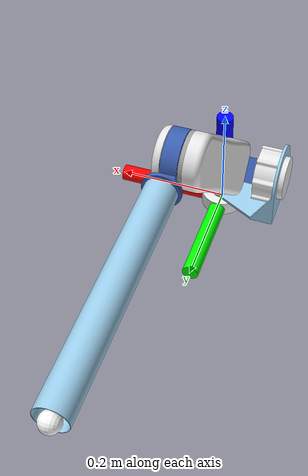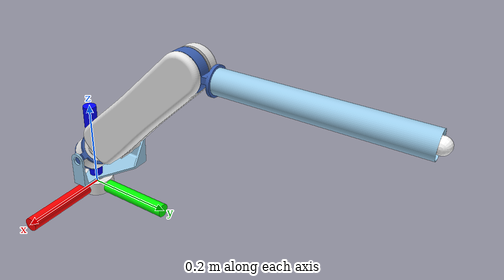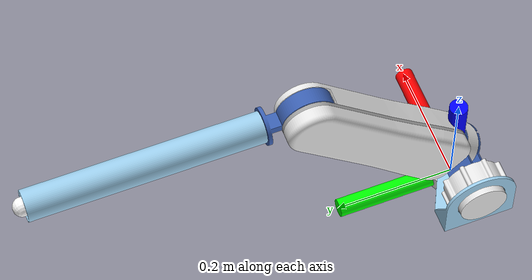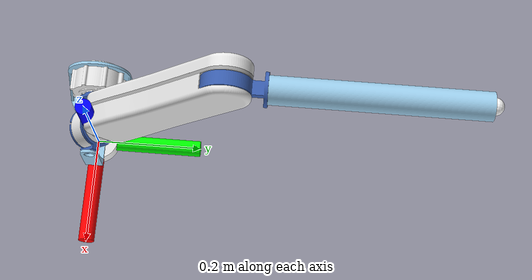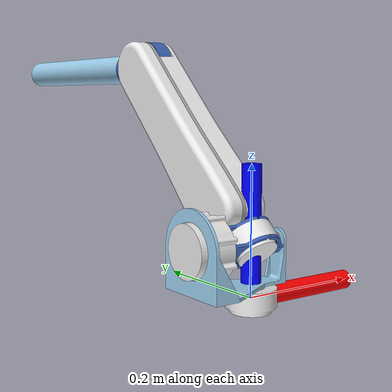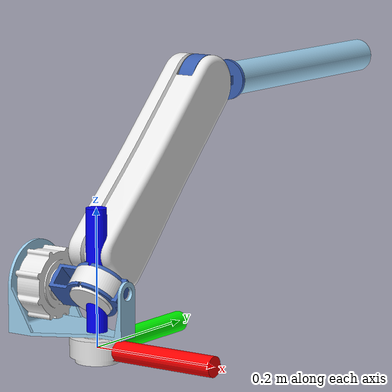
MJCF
<?xml version='1.0' encoding='utf-8'?>
<mujoco model="sim_arm_131-1x3-none">
  <compiler angle="radian" meshdir="meshes" />
  <option timestep="0.001" gravity="0 0 -9.81"></option>

  <asset>
    <mesh name="rs01_sim_1" file="rs01_sim_1.stl" />
    <mesh name="main_shoulder_bracket_190fdce0f16e70a27" file="main_shoulder_bracket_190fdce0f16e70a27.stl" />
    <mesh name="rs03_sim_1" file="rs03_sim_1.stl" />
    <mesh name="m3_to_bearing_bracket_190fdce0f16e70a27" file="m3_to_bearing_bracket_190fdce0f16e70a27.stl" />
    <mesh name="rs01_sim_2" file="rs01_sim_2.stl" />
    <mesh name="m2_to_m3_bracket_190fdce0f16e70a27" file="m2_to_m3_bracket_190fdce0f16e70a27.stl" />
    <mesh name="shoulder_input_1" file="shoulder_input_1.stl" />
    <mesh name="main_plate_1" file="main_plate_1.stl" />
    <mesh name="rs01_sim_3" file="rs01_sim_3.stl" />
    <mesh name="motor_side_shell_1" file="motor_side_shell_1.stl" />
    <mesh name="trans_side_shell_1" file="trans_side_shell_1.stl" />
    <mesh name="secondary_plate_1" file="secondary_plate_1.stl" />
    <mesh name="wrist_output_1" file="wrist_output_1.stl" />
    <mesh name="dummy_tube_wrist_1" file="Longer_Dummy_Wrist_Reversed.stl" />
  </asset>

  <contact>
    <exclude name="fix01" body1="root" body2="body_1"/>
    <exclude name="fix02" body1="root" body2="body_2"/>
    <exclude name="fix03" body1="root" body2="body_3"/>
    <exclude name="fix04" body1="root" body2="body_4"/>
    <exclude name="fix05" body1="body_1" body2="body_2"/>
    <exclude name="fix06" body1="body_1" body2="body_3"/>
    <exclude name="fix07" body1="body_1" body2="body_4"/>
    <exclude name="fix08" body1="body_2" body2="body_3"/>
    <exclude name="fix09" body1="body_2" body2="body_4"/>
    <exclude name="fix10" body1="body_3" body2="body_4"/>
  </contact>

  <worldbody>
    <site type="cylinder" name="worldX" pos = "0.1 0 0" euler="0 1.570796 0" size="0.015 0.1" rgba="1 0 0 1" />
    <site type="cylinder" name="worldY" pos = "0 0.1 0" euler="1.570796 0 0" size="0.015 0.1" rgba="0 1 0 1" />
    <site type="cylinder" name="worldZ" pos = "0 0 0.1" euler="0 0 0" size="0.015 0.1" rgba="0 0 1 1" />

    <body name="root" pos="0 0 0" quat="1 0 0 0">
      <geom type="mesh" rgba="0.917647 0.917647 0.917647 1" mesh="rs01_sim_1" mass="0.38"/>
      <body name="body_1" pos="0 0 0.0165129" quat="-2.32051e-08 1 0 0">
        <geom type="mesh" rgba="0.615686 0.811765 0.929412 1" mesh="main_shoulder_bracket_190fdce0f16e70a27" mass="0.152"/>
        <geom pos="-0.10625 0 -0.067" quat="0.5 -0.5 0.5 -0.5" type="mesh" rgba="0.917647 0.917647 0.917647 1" mesh="rs03_sim_1" mass="0.88"/>
        <body name="body_2" pos="-0.06425 1.12539e-09 -0.067" euler="1.57 -1.57 0.785">
          <geom type="mesh" rgba="0.231373 0.380392 0.705882 1" mesh="m3_to_bearing_bracket_190fdce0f16e70a27" mass="0.035"/>
          <geom pos="0 -0.014 -0.06425" quat="0.5 -0.5 0.5 0.5" type="mesh" rgba="0.917647 0.917647 0.917647 1" mesh="rs01_sim_2" mass="0.38"/>
          <geom pos="0 -0.014 -0.06425" quat="0.5 -0.5 0.5 0.5" type="mesh" rgba="0.231373 0.380392 0.705882 1" mesh="m2_to_m3_bracket_190fdce0f16e70a27" mass="0.013"/>
          <body name="body_3" pos="-1.0718e-10 -0.018 -0.06425" quat="0.5 -0.5 0.5 0.5">
            <geom type="mesh" rgba="0.231373 0.380392 0.705882 1" mesh="shoulder_input_1" mass="0.016"/>
            <geom pos="-0.0165 0 -0.003" quat="-1.64085e-08 -0.707107 1.64085e-08 -0.707107" type="mesh" rgba="0.647059 0.647059 0.647059 1" mesh="main_plate_1" mass="0.539"/>
            <geom pos="-0.0165 0 -0.05225" quat="-1.64085e-08 -0.707107 1.64085e-08 -0.707107" type="mesh" rgba="0.917647 0.917647 0.917647 1" mesh="rs01_sim_3" mass="0.38"/>
            <geom pos="0.0115 -1.29949e-09 -0.05225" quat="0.707107 0 -0.707107 0" type="mesh" rgba="0.917647 0.917647 0.917647 1" mesh="secondary_plate_1" mass="0.234"/>
            <geom pos="-0.0165 0.04925 -0.042625" quat="0.707107 0 -0.707107 0" type="mesh" rgba="0.917647 0.917647 0.917647 1" mesh="motor_side_shell_1" mass="0.114"/>
            <geom pos="-0.02275 0.04925 -0.042625" quat="-1.64085e-08 -0.707107 1.64085e-08 -0.707107" type="mesh" rgba="0.917647 0.917647 0.917647 1" mesh="trans_side_shell_1" mass="0.096"/>
            <body name="body_4" pos="0.01225 -1.29949e-09 -0.35225" euler="1.57 1.57 0.785">
              <geom type="mesh" rgba="0.231373 0.380392 0.705882 1" mesh="wrist_output_1" mass="0.073"/>
              <geom pos="-0.07125 0 -0.01475" quat="-1.64085e-08 -0.707107 1.64085e-08 -0.707107" type="mesh" rgba="0.615686 0.811765 0.929412 1" mesh="dummy_tube_wrist_1" mass="0.126"/>
              <geom type='sphere' size='.001' name="payload_mass" pos='-0.44825 0 -0.015' rgba='1 1 1 1' mass='4'/>
              <site type='sphere' size='.015' name='endeff' pos='-0.44825 0 -0.015' rgba='1 1 1 1'/>
            </body>
          </body>
        </body>
      </body>
    </body>
  </worldbody>
</mujoco>
